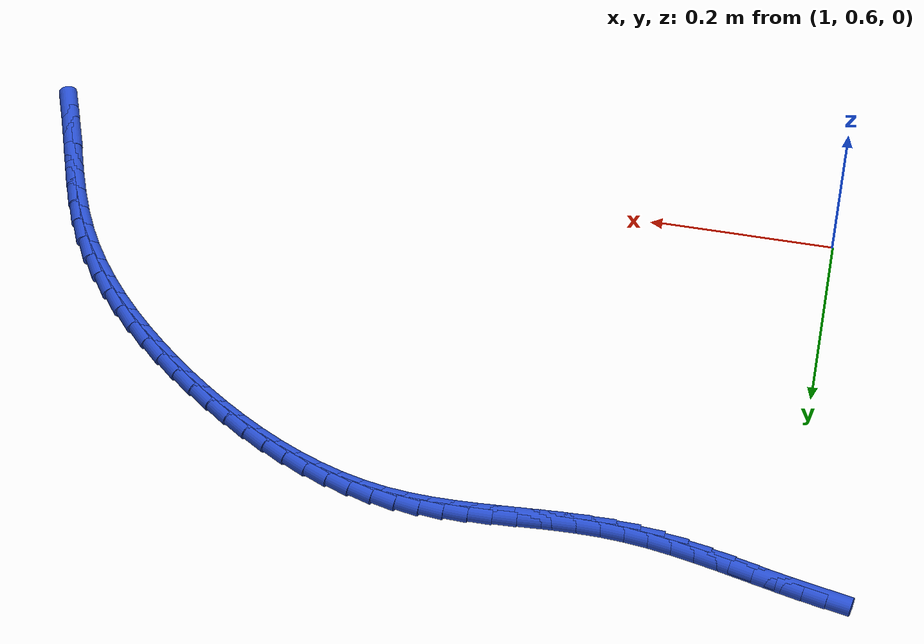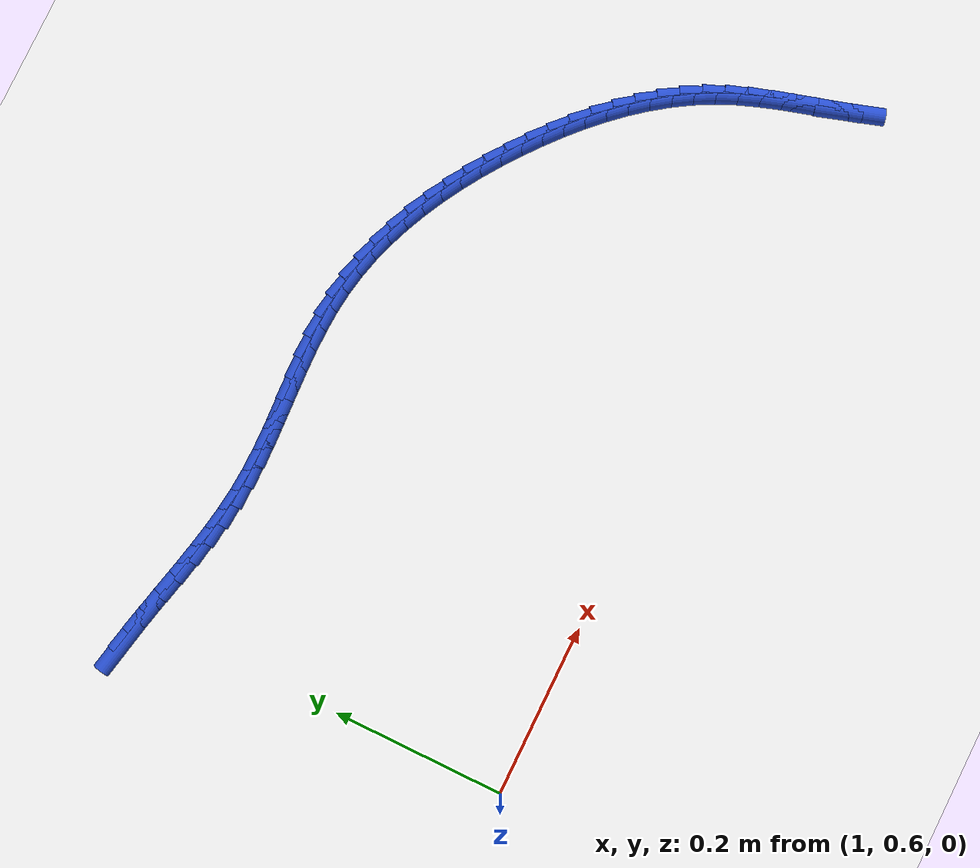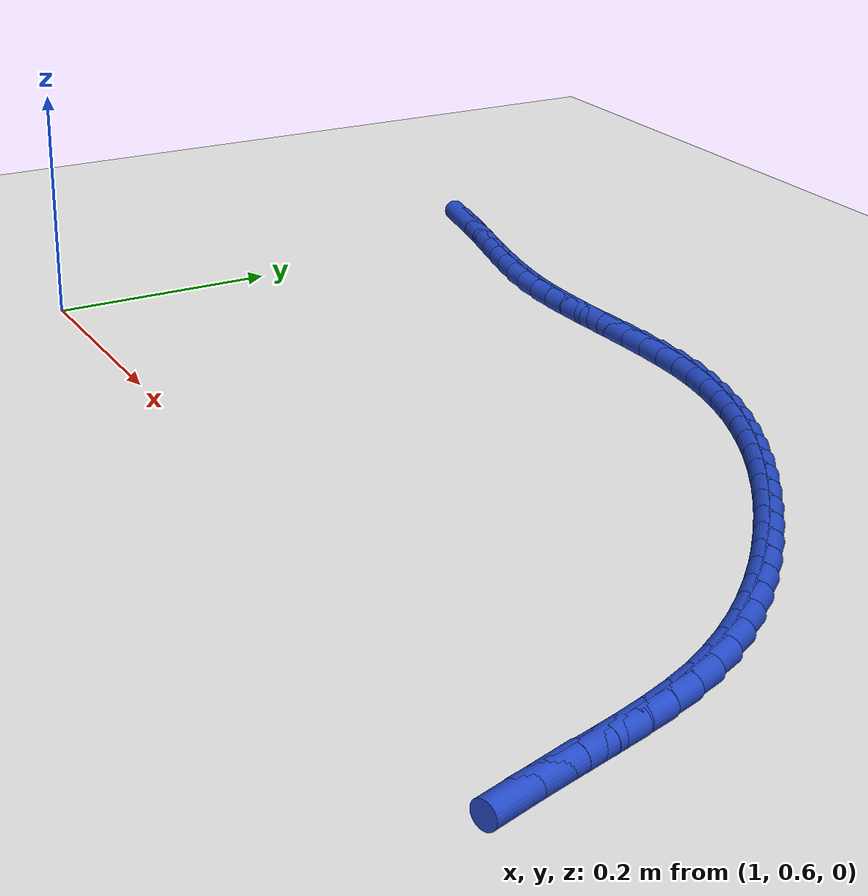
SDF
<sdf version="1.6">
 <world name="default">
  <model name="ground_plane">
   <static>1</static>
   <link name="link">
    <collision name="collision">
     <geometry><plane><normal>0 0 1</normal><size>100 100</size></plane></geometry>
     <surface><friction><ode><mu>100</mu><mu2>50</mu2></ode></friction></surface>
    </collision>
    <visual name="visual">
     <cast_shadows>0</cast_shadows>
     <geometry><plane><normal>0 0 1</normal><size>100 100</size></plane></geometry>
     <material>
      <script><uri>file://media/materials/scripts/gazebo.material</uri><name>Gazebo/WhiteGlow</name></script>
     </material>
    </visual>
   </link>
  </model>
  <model name="line">
   <link name="link_63">
    <pose>0.9684347372097253 1.0442748635944017 0.01 0 1.57 -0.19869862781246114</pose>
    <collision name="collision">
     <geometry><cylinder><radius>0.01</radius><length>0.08</length></cylinder></geometry>
    </collision>
    <visual name="visual">
     <material>
      <script><name>Gazebo/Blue</name><uri>file://media/materials/scripts/gazebo.material</uri></script>
     </material>
     <geometry><cylinder><radius>0.01</radius><length>0.08</length></cylinder></geometry>
    </visual>
   </link>
   <link name="link_64">
    <pose>0.993385510411803 1.0392508870650699 0.01 0 1.57 -0.22067828358900163</pose>
    <collision name="collision">
     <geometry><cylinder><radius>0.01</radius><length>0.08</length></cylinder></geometry>
    </collision>
    <visual name="visual">
     <material>
      <script><name>Gazebo/Blue</name><uri>file://media/materials/scripts/gazebo.material</uri></script>
     </material>
     <geometry><cylinder><radius>0.01</radius><length>0.08</length></cylinder></geometry>
    </visual>
   </link>
   <link name="link_65">
    <pose>1.0183264710238156 1.0336558381915144 0.01 0 1.57 -0.23156929929590278</pose>
    <collision name="collision">
     <geometry><cylinder><radius>0.01</radius><length>0.08</length></cylinder></geometry>
    </collision>
    <visual name="visual">
     <material>
      <script><name>Gazebo/Blue</name><uri>file://media/materials/scripts/gazebo.material</uri></script>
     </material>
     <geometry><cylinder><radius>0.01</radius><length>0.08</length></cylinder></geometry>
    </visual>
   </link>
   <link name="link_66">
    <pose>1.0432768195904725 1.0277725633314432 0.01 0 1.57 -0.23151766297735513</pose>
    <collision name="collision">
     <geometry><cylinder><radius>0.01</radius><length>0.08</length></cylinder></geometry>
    </collision>
    <visual name="visual">
     <material>
      <script><name>Gazebo/Blue</name><uri>file://media/materials/scripts/gazebo.material</uri></script>
     </material>
     <geometry><cylinder><radius>0.01</radius><length>0.08</length></cylinder></geometry>
    </visual>
   </link>
   <link name="link_67">
    <pose>1.0682557566564828 1.0218839088425629 0.01 0 1.57 -0.22056030839429194</pose>
    <collision name="collision">
     <geometry><cylinder><radius>0.01</radius><length>0.08</length></cylinder></geometry>
    </collision>
    <visual name="visual">
     <material>
      <script><name>Gazebo/Blue</name><uri>file://media/materials/scripts/gazebo.material</uri></script>
     </material>
     <geometry><cylinder><radius>0.01</radius><length>0.08</length></cylinder></geometry>
    </visual>
   </link>
   <link name="link_68">
    <pose>1.0932824827665546 1.0162727210825817 0.01 0 1.57 -0.19862646898250363</pose>
    <collision name="collision">
     <geometry><cylinder><radius>0.01</radius><length>0.08</length></cylinder></geometry>
    </collision>
    <visual name="visual">
     <material>
      <script><name>Gazebo/Blue</name><uri>file://media/materials/scripts/gazebo.material</uri></script>
     </material>
     <geometry><cylinder><radius>0.01</radius><length>0.08</length></cylinder></geometry>
    </visual>
   </link>
   <link name="link_69">
    <pose>1.1183761984653982 1.0112218464092073 0.01 0 1.57 -0.16557617922594312</pose>
    <collision name="collision">
     <geometry><cylinder><radius>0.01</radius><length>0.08</length></cylinder></geometry>
    </collision>
    <visual name="visual">
     <material>
      <script><name>Gazebo/Blue</name><uri>file://media/materials/scripts/gazebo.material</uri></script>
     </material>
     <geometry><cylinder><radius>0.01</radius><length>0.08</length></cylinder></geometry>
    </visual>
   </link>
   <link name="link_70">
    <pose>1.1435561042977225 1.0070141311801468 0.01 0 1.57 -0.1212793880532881</pose>
    <collision name="collision">
     <geometry><cylinder><radius>0.01</radius><length>0.08</length></cylinder></geometry>
    </collision>
    <visual name="visual">
     <material>
      <script><name>Gazebo/Blue</name><uri>file://media/materials/scripts/gazebo.material</uri></script>
     </material>
     <geometry><cylinder><radius>0.01</radius><length>0.08</length></cylinder></geometry>
    </visual>
   </link>
   <link name="link_71">
    <pose>1.1688414008082355 1.0039324217531076 0.01 0 1.57 -0.06694136435986407</pose>
    <collision name="collision">
     <geometry><cylinder><radius>0.01</radius><length>0.08</length></cylinder></geometry>
    </collision>
    <visual name="visual">
     <material>
      <script><name>Gazebo/Blue</name><uri>file://media/materials/scripts/gazebo.material</uri></script>
     </material>
     <geometry><cylinder><radius>0.01</radius><length>0.08</length></cylinder></geometry>
    </visual>
   </link>
   <link name="link_72">
    <pose>1.1942484496696684 1.0022290941909067 0.01 0 1.57 -0.01696394496879802</pose>
    <collision name="collision">
     <geometry><cylinder><radius>0.01</radius><length>0.08</length></cylinder></geometry>
    </collision>
    <visual name="visual">
     <material>
      <script><name>Gazebo/Blue</name><uri>file://media/materials/scripts/gazebo.material</uri></script>
     </material>
     <geometry><cylinder><radius>0.01</radius><length>0.08</length></cylinder></geometry>
    </visual>
   </link>
   <link name="link_73">
    <pose>1.2197600486692248 1.0017962753104026 0.01 0 1.57 0.019331391867748765</pose>
    <collision name="collision">
     <geometry><cylinder><radius>0.01</radius><length>0.08</length></cylinder></geometry>
    </collision>
    <visual name="visual">
     <material>
      <script><name>Gazebo/Blue</name><uri>file://media/materials/scripts/gazebo.material</uri></script>
     </material>
     <geometry><cylinder><radius>0.01</radius><length>0.08</length></cylinder></geometry>
    </visual>
   </link>
   <link name="link_74">
    <pose>1.2453370715935228 1.0022907763636921 0.01 0 1.57 0.04194626325396615</pose>
    <collision name="collision">
     <geometry><cylinder><radius>0.01</radius><length>0.08</length></cylinder></geometry>
    </collision>
    <visual name="visual">
     <material>
      <script><name>Gazebo/Blue</name><uri>file://media/materials/scripts/gazebo.material</uri></script>
     </material>
     <geometry><cylinder><radius>0.01</radius><length>0.08</length></cylinder></geometry>
    </visual>
   </link>
   <link name="link_75">
    <pose>1.2709400145104912 1.0033653544574144 0.01 0 1.57 0.051047640524406745</pose>
    <collision name="collision">
     <geometry><cylinder><radius>0.01</radius><length>0.08</length></cylinder></geometry>
    </collision>
    <visual name="visual">
     <material>
      <script><name>Gazebo/Blue</name><uri>file://media/materials/scripts/gazebo.material</uri></script>
     </material>
     <geometry><cylinder><radius>0.01</radius><length>0.08</length></cylinder></geometry>
    </visual>
   </link>
   <link name="link_76">
    <pose>1.2965293734880563 1.0046727666982083 0.01 0 1.57 0.04668405523761703</pose>
    <collision name="collision">
     <geometry><cylinder><radius>0.01</radius><length>0.08</length></cylinder></geometry>
    </collision>
    <visual name="visual">
     <material>
      <script><name>Gazebo/Blue</name><uri>file://media/materials/scripts/gazebo.material</uri></script>
     </material>
     <geometry><cylinder><radius>0.01</radius><length>0.08</length></cylinder></geometry>
    </visual>
   </link>
   <link name="link_77">
    <pose>1.322065644594146 1.0058657701927114 0.01 0 1.57 0.02873603805752681</pose>
    <collision name="collision">
     <geometry><cylinder><radius>0.01</radius><length>0.08</length></cylinder></geometry>
    </collision>
    <visual name="visual">
     <material>
      <script><name>Gazebo/Blue</name><uri>file://media/materials/scripts/gazebo.material</uri></script>
     </material>
     <geometry><cylinder><radius>0.01</radius><length>0.08</length></cylinder></geometry>
    </visual>
   </link>
   <link name="link_78">
    <pose>1.3475093238966882 1.0065971220475631 0.01 0 1.57 -0.0030635157762455376</pose>
    <collision name="collision">
     <geometry><cylinder><radius>0.01</radius><length>0.08</length></cylinder></geometry>
    </collision>
    <visual name="visual">
     <material>
      <script><name>Gazebo/Blue</name><uri>file://media/materials/scripts/gazebo.material</uri></script>
     </material>
     <geometry><cylinder><radius>0.01</radius><length>0.08</length></cylinder></geometry>
    </visual>
   </link>
   <link name="link_79">
    <pose>1.3728209074636084 1.0065195793694013 0.01 0 1.57 -0.04903309649734141</pose>
    <collision name="collision">
     <geometry><cylinder><radius>0.01</radius><length>0.08</length></cylinder></geometry>
    </collision>
    <visual name="visual">
     <material>
      <script><name>Gazebo/Blue</name><uri>file://media/materials/scripts/gazebo.material</uri></script>
     </material>
     <geometry><cylinder><radius>0.01</radius><length>0.08</length></cylinder></geometry>
    </visual>
   </link>
   <link name="link_80">
    <pose>1.3979608913628359 1.0052858992648657 0.01 0 1.57 -0.10935177032073842</pose>
    <collision name="collision">
     <geometry><cylinder><radius>0.01</radius><length>0.08</length></cylinder></geometry>
    </collision>
    <visual name="visual">
     <material>
      <script><name>Gazebo/Blue</name><uri>file://media/materials/scripts/gazebo.material</uri></script>
     </material>
     <geometry><cylinder><radius>0.01</radius><length>0.08</length></cylinder></geometry>
    </visual>
   </link>
   <link name="link_81">
    <pose>1.42288977419014 1.0025489638379759 0.01 0 1.57 -0.17959945777122427</pose>
    <collision name="collision">
     <geometry><cylinder><radius>0.01</radius><length>0.08</length></cylinder></geometry>
    </collision>
    <visual name="visual">
     <material>
      <script><name>Gazebo/Blue</name><uri>file://media/materials/scripts/gazebo.material</uri></script>
     </material>
     <geometry><cylinder><radius>0.01</radius><length>0.08</length></cylinder></geometry>
    </visual>
   </link>
   <link name="link_82">
    <pose>1.4475702069751228 0.9980680892588639 0.01 0 1.57 -0.24748477513679706</pose>
    <collision name="collision">
     <geometry><cylinder><radius>0.01</radius><length>0.08</length></cylinder></geometry>
    </collision>
    <visual name="visual">
     <material>
      <script><name>Gazebo/Blue</name><uri>file://media/materials/scripts/gazebo.material</uri></script>
     </material>
     <geometry><cylinder><radius>0.01</radius><length>0.08</length></cylinder></geometry>
    </visual>
   </link>
   <link name="link_83">
    <pose>1.4719709139083057 0.9919028988203134 0.01 0 1.57 -0.31076632546800836</pose>
    <collision name="collision">
     <geometry><cylinder><radius>0.01</radius><length>0.08</length></cylinder></geometry>
    </collision>
    <visual name="visual">
     <material>
      <script><name>Gazebo/Blue</name><uri>file://media/materials/scripts/gazebo.material</uri></script>
     </material>
     <geometry><cylinder><radius>0.01</radius><length>0.08</length></cylinder></geometry>
    </visual>
   </link>
   <link name="link_84">
    <pose>1.4960616826452 0.9841656022879668 0.01 0 1.57 -0.3694583398115536</pose>
    <collision name="collision">
     <geometry><cylinder><radius>0.01</radius><length>0.08</length></cylinder></geometry>
    </collision>
    <visual name="visual">
     <material>
      <script><name>Gazebo/Blue</name><uri>file://media/materials/scripts/gazebo.material</uri></script>
     </material>
     <geometry><cylinder><radius>0.01</radius><length>0.08</length></cylinder></geometry>
    </visual>
   </link>
   <link name="link_85">
    <pose>1.5198123008413191 0.9749684094274678 0.01 0 1.57 -0.42369887355880903</pose>
    <collision name="collision">
     <geometry><cylinder><radius>0.01</radius><length>0.08</length></cylinder></geometry>
    </collision>
    <visual name="visual">
     <material>
      <script><name>Gazebo/Blue</name><uri>file://media/materials/scripts/gazebo.material</uri></script>
     </material>
     <geometry><cylinder><radius>0.01</radius><length>0.08</length></cylinder></geometry>
    </visual>
   </link>
   <link name="link_86">
    <pose>1.5431925561521773 0.964423530004459 0.01 0 1.57 -0.47371022766011656</pose>
    <collision name="collision">
     <geometry><cylinder><radius>0.01</radius><length>0.08</length></cylinder></geometry>
    </collision>
    <visual name="visual">
     <material>
      <script><name>Gazebo/Blue</name><uri>file://media/materials/scripts/gazebo.material</uri></script>
     </material>
     <geometry><cylinder><radius>0.01</radius><length>0.08</length></cylinder></geometry>
    </visual>
   </link>
   <link name="link_87">
    <pose>1.5661722362332848 0.9526431737845836 0.01 0 1.57 -0.5197657778259914</pose>
    <collision name="collision">
     <geometry><cylinder><radius>0.01</radius><length>0.08</length></cylinder></geometry>
    </collision>
    <visual name="visual">
     <material>
      <script><name>Gazebo/Blue</name><uri>file://media/materials/scripts/gazebo.material</uri></script>
     </material>
     <geometry><cylinder><radius>0.01</radius><length>0.08</length></cylinder></geometry>
    </visual>
   </link>
   <link name="link_88">
    <pose>1.5887211287401564 0.9397395505334846 0.01 0 1.57 -0.5621643218255918</pose>
    <collision name="collision">
     <geometry><cylinder><radius>0.01</radius><length>0.08</length></cylinder></geometry>
    </collision>
    <visual name="visual">
     <material>
      <script><name>Gazebo/Blue</name><uri>file://media/materials/scripts/gazebo.material</uri></script>
     </material>
     <geometry><cylinder><radius>0.01</radius><length>0.08</length></cylinder></geometry>
    </visual>
   </link>
   <link name="link_89">
    <pose>1.6108090213283042 0.9258248700168048 0.01 0 1.57 -0.6012115551213744</pose>
    <collision name="collision">
     <geometry><cylinder><radius>0.01</radius><length>0.08</length></cylinder></geometry>
    </collision>
    <visual name="visual">
     <material>
      <script><name>Gazebo/Blue</name><uri>file://media/materials/scripts/gazebo.material</uri></script>
     </material>
     <geometry><cylinder><radius>0.01</radius><length>0.08</length></cylinder></geometry>
    </visual>
   </link>
   <link name="link_90">
    <pose>1.6324057016532407 0.9110113420001873 0.01 0 1.57 -0.6372075642676173</pose>
    <collision name="collision">
     <geometry><cylinder><radius>0.01</radius><length>0.08</length></cylinder></geometry>
    </collision>
    <visual name="visual">
     <material>
      <script><name>Gazebo/Blue</name><uri>file://media/materials/scripts/gazebo.material</uri></script>
     </material>
     <geometry><cylinder><radius>0.01</radius><length>0.08</length></cylinder></geometry>
    </visual>
   </link>
   <link name="link_91">
    <pose>1.6534809573704794 0.8954111762492747 0.01 0 1.57 -0.6708895694254152</pose>
    <collision name="collision">
     <geometry><cylinder><radius>0.01</radius><length>0.08</length></cylinder></geometry>
    </collision>
    <visual name="visual">
     <material>
      <script><name>Gazebo/Blue</name><uri>file://media/materials/scripts/gazebo.material</uri></script>
     </material>
     <geometry><cylinder><radius>0.01</radius><length>0.08</length></cylinder></geometry>
    </visual>
   </link>
   <link name="link_92">
    <pose>1.673997848330834 0.8791268559062365 0.01 0 1.57 -0.7063212442749429</pose>
    <collision name="collision">
     <geometry><cylinder><radius>0.01</radius><length>0.08</length></cylinder></geometry>
    </collision>
    <visual name="visual">
     <material>
      <script><name>Gazebo/Blue</name><uri>file://media/materials/scripts/gazebo.material</uri></script>
     </material>
     <geometry><cylinder><radius>0.01</radius><length>0.08</length></cylinder></geometry>
    </visual>
   </link>
   <link name="link_93">
    <pose>1.693862818512547 0.8621790125584092 0.01 0 1.57 -0.7456774506436046</pose>
    <collision name="collision">
     <geometry><cylinder><radius>0.01</radius><length>0.08</length></cylinder></geometry>
    </collision>
    <visual name="visual">
     <material>
      <script><name>Gazebo/Blue</name><uri>file://media/materials/scripts/gazebo.material</uri></script>
     </material>
     <geometry><cylinder><radius>0.01</radius><length>0.08</length></cylinder></geometry>
    </visual>
   </link>
   <link name="link_94">
    <pose>1.712953963495673 0.8445472935185232 0.01 0 1.57 -0.7892591721614581</pose>
    <collision name="collision">
     <geometry><cylinder><radius>0.01</radius><length>0.08</length></cylinder></geometry>
    </collision>
    <visual name="visual">
     <material>
      <script><name>Gazebo/Blue</name><uri>file://media/materials/scripts/gazebo.material</uri></script>
     </material>
     <geometry><cylinder><radius>0.01</radius><length>0.08</length></cylinder></geometry>
    </visual>
   </link>
   <link name="link_95">
    <pose>1.731149167503821 0.8262110405338725 0.01 0 1.57 -0.8373483734878723</pose>
    <collision name="collision">
     <geometry><cylinder><radius>0.01</radius><length>0.08</length></cylinder></geometry>
    </collision>
    <visual name="visual">
     <material>
      <script><name>Gazebo/Blue</name><uri>file://media/materials/scripts/gazebo.material</uri></script>
     </material>
     <geometry><cylinder><radius>0.01</radius><length>0.08</length></cylinder></geometry>
    </visual>
   </link>
   <link name="link_96">
    <pose>1.748326314760598 0.8071495953517502 0.01 0 1.57 -0.8901989404258972</pose>
    <collision name="collision">
     <geometry><cylinder><radius>0.01</radius><length>0.08</length></cylinder></geometry>
    </collision>
    <visual name="visual">
     <material>
      <script><name>Gazebo/Blue</name><uri>file://media/materials/scripts/gazebo.material</uri></script>
     </material>
     <geometry><cylinder><radius>0.01</radius><length>0.08</length></cylinder></geometry>
    </visual>
   </link>
   <link name="link_97">
    <pose>1.7643632894896122 0.7873422997194495 0.01 0 1.57 -0.9480052742100705</pose>
    <collision name="collision">
     <geometry><cylinder><radius>0.01</radius><length>0.08</length></cylinder></geometry>
    </collision>
    <visual name="visual">
     <material>
      <script><name>Gazebo/Blue</name><uri>file://media/materials/scripts/gazebo.material</uri></script>
     </material>
     <geometry><cylinder><radius>0.01</radius><length>0.08</length></cylinder></geometry>
    </visual>
   </link>
   <link name="link_98">
    <pose>1.779137975914471 0.7667684953842638 0.01 0 1.57 -1.0108624873857648</pose>
    <collision name="collision">
     <geometry><cylinder><radius>0.01</radius><length>0.08</length></cylinder></geometry>
    </collision>
    <visual name="visual">
     <material>
      <script><name>Gazebo/Blue</name><uri>file://media/materials/scripts/gazebo.material</uri></script>
     </material>
     <geometry><cylinder><radius>0.01</radius><length>0.08</length></cylinder></geometry>
    </visual>
   </link>
   <link name="link_99">
    <pose>1.7925282582587827 0.745407524093486 0.01 0 1.57 -1.0787200584840535</pose>
    <collision name="collision">
     <geometry><cylinder><radius>0.01</radius><length>0.08</length></cylinder></geometry>
    </collision>
    <visual name="visual">
     <material>
      <script><name>Gazebo/Blue</name><uri>file://media/materials/scripts/gazebo.material</uri></script>
     </material>
     <geometry><cylinder><radius>0.01</radius><length>0.08</length></cylinder></geometry>
    </visual>
   </link>
   <link name="link_100">
    <pose>1.8044120207461543 0.72323872759441 0.01 0 1.57 -1.1492256592700316</pose>
    <collision name="collision">
     <geometry><cylinder><radius>0.01</radius><length>0.08</length></cylinder></geometry>
    </collision>
    <visual name="visual">
     <material>
      <script><name>Gazebo/Blue</name><uri>file://media/materials/scripts/gazebo.material</uri></script>
     </material>
     <geometry><cylinder><radius>0.01</radius><length>0.08</length></cylinder></geometry>
    </visual>
   </link>
   <link name="link_101">
    <pose>1.8147163308067173 0.7002615138613196 0.01 0 1.57 -1.2085958642482801</pose>
    <collision name="collision">
     <geometry><cylinder><radius>0.01</radius><length>0.08</length></cylinder></geometry>
    </collision>
    <visual name="visual">
     <material>
      <script><name>Gazebo/Blue</name><uri>file://media/materials/scripts/gazebo.material</uri></script>
     </material>
     <geometry><cylinder><radius>0.01</radius><length>0.08</length></cylinder></geometry>
    </visual>
   </link>
   <link name="link_102">
    <pose>1.8236809917320649 0.6766028837854275 0.01 0 1.57 -1.251544468909534</pose>
    <collision name="collision">
     <geometry><cylinder><radius>0.01</radius><length>0.08</length></cylinder></geometry>
    </collision>
    <visual name="visual">
     <material>
      <script><name>Gazebo/Blue</name><uri>file://media/materials/scripts/gazebo.material</uri></script>
     </material>
     <geometry><cylinder><radius>0.01</radius><length>0.08</length></cylinder></geometry>
    </visual>
   </link>
   <link name="link_103">
    <pose>1.8316683170189791 0.6524398211232341 0.01 0 1.57 -1.2783856392312953</pose>
    <collision name="collision">
     <geometry><cylinder><radius>0.01</radius><length>0.08</length></cylinder></geometry>
    </collision>
    <visual name="visual">
     <material>
      <script><name>Gazebo/Blue</name><uri>file://media/materials/scripts/gazebo.material</uri></script>
     </material>
     <geometry><cylinder><radius>0.01</radius><length>0.08</length></cylinder></geometry>
    </visual>
   </link>
   <link name="link_104">
    <pose>1.8390409064505555 0.6279494264330201 0.01 0 1.57 -1.2894873298492928</pose>
    <collision name="collision">
     <geometry><cylinder><radius>0.01</radius><length>0.08</length></cylinder></geometry>
    </collision>
    <visual name="visual">
     <material>
      <script><name>Gazebo/Blue</name><uri>file://media/materials/scripts/gazebo.material</uri></script>
     </material>
     <geometry><cylinder><radius>0.01</radius><length>0.08</length></cylinder></geometry>
    </visual>
   </link>
   <link name="link_105">
    <pose>1.84616135980989 0.6033088002730669 0.01 0 1.57 -1.2850598846279508</pose>
    <collision name="collision">
     <geometry><cylinder><radius>0.01</radius><length>0.08</length></cylinder></geometry>
    </collision>
    <visual name="visual">
     <material>
      <script><name>Gazebo/Blue</name><uri>file://media/materials/scripts/gazebo.material</uri></script>
     </material>
     <geometry><cylinder><radius>0.01</radius><length>0.08</length></cylinder></geometry>
    </visual>
   </link>
   <link name="link_106">
    <pose>1.853392276880079 0.5786950432016557 0.01 0 1.57 -1.265080381319947</pose>
    <collision name="collision">
     <geometry><cylinder><radius>0.01</radius><length>0.08</length></cylinder></geometry>
    </collision>
    <visual name="visual">
     <material>
      <script><name>Gazebo/Blue</name><uri>file://media/materials/scripts/gazebo.material</uri></script>
     </material>
     <geometry><cylinder><radius>0.01</radius><length>0.08</length></cylinder></geometry>
    </visual>
   </link>
  </model>
 </world>
</sdf>
